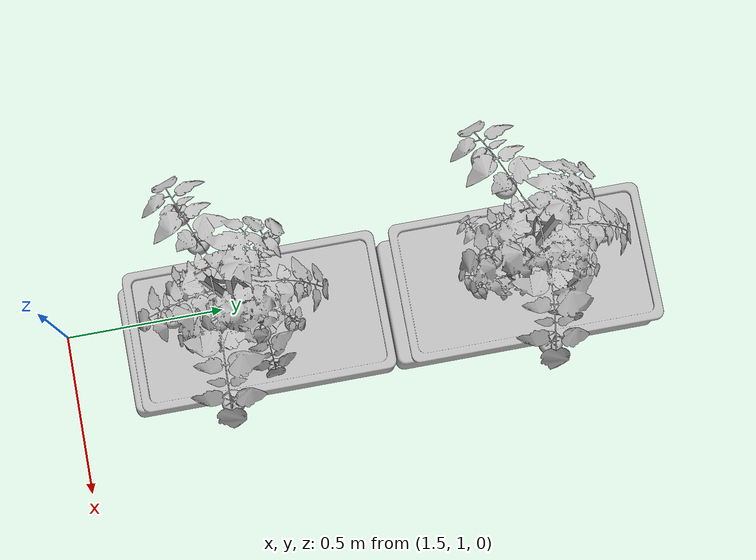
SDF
<sdf version="1.6">
 <world name="default">
  <model name="plant12">
   <static>0</static>
   <link name="tomato_plant_link">
    <inertial>
     <mass>20</mass>
     <inertia><ixx>1</ixx><ixy>0</ixy><ixz>0</ixz><iyy>1</iyy><iyz>0</iyz><izz>1</izz></inertia>
    </inertial>
    <visual name="visual">
     <geometry><mesh><uri>model://tomato_plant/meshes/tomato_plant.obj</uri></mesh></geometry>
    </visual>
    <collision name="collision">
     <pose>0 0 0.05 0 -0 0</pose>
     <geometry><box><size>0.1 0.1 0.1</size></box></geometry>
    </collision>
   </link>
   <link name="t_link_0">
    <pose>0.176111 0.046061 0.713729 0 -0 0</pose>
    <inertial>
     <mass>0.1</mass>
     <inertia><ixx>1</ixx><ixy>0</ixy><ixz>0</ixz><iyy>1</iyy><iyz>0</iyz><izz>1</izz></inertia>
    </inertial>
    <collision name="collision"><geometry><sphere><radius>0.02</radius></sphere></geometry></collision>
    <visual name="visual">
     <geometry><mesh><uri>model://green_tomato/meshes/green_tomato.obj</uri></mesh></geometry>
    </visual>
   </link>
   <joint name="t_joint_0" type="fixed">
    <parent>tomato_plant_link</parent>
    <child>t_link_0</child>
    <axis>
     <xyz>0 0 1</xyz>
     <use_parent_model_frame>1</use_parent_model_frame>
     <limit><lower>-1e+16</lower><upper>1e+16</upper></limit>
    </axis>
    <sensor name="force_torque" type="force_torque">
     <always_on>1</always_on>
     <update_rate>250</update_rate>
     <plugin name="breakable_0" filename="libBreakableJointPlugin.so">
      <breaking_force_N>10</breaking_force_N>
     </plugin>
    </sensor>
   </joint>
   <link name="t_link_1">
    <pose>0.063172 0.108629 0.685474 0 -0 0</pose>
    <inertial>
     <mass>0.1</mass>
     <inertia><ixx>1</ixx><ixy>0</ixy><ixz>0</ixz><iyy>1</iyy><iyz>0</iyz><izz>1</izz></inertia>
    </inertial>
    <collision name="collision"><geometry><sphere><radius>0.02</radius></sphere></geometry></collision>
    <visual name="visual">
     <geometry><mesh><uri>model://green_tomato/meshes/green_tomato.obj</uri></mesh></geometry>
    </visual>
   </link>
   <joint name="t_joint_1" type="fixed">
    <parent>tomato_plant_link</parent>
    <child>t_link_1</child>
    <axis>
     <xyz>0 0 1</xyz>
     <use_parent_model_frame>1</use_parent_model_frame>
     <limit><lower>-1e+16</lower><upper>1e+16</upper></limit>
    </axis>
    <sensor name="force_torque" type="force_torque">
     <always_on>1</always_on>
     <update_rate>250</update_rate>
     <plugin name="breakable_1" filename="libBreakableJointPlugin.so">
      <breaking_force_N>10</breaking_force_N>
     </plugin>
    </sensor>
   </joint>
   <link name="t_link_2">
    <pose>0.062027 -0.170581 0.614534 0 -0 0</pose>
    <inertial>
     <mass>0.1</mass>
     <inertia><ixx>1</ixx><ixy>0</ixy><ixz>0</ixz><iyy>1</iyy><iyz>0</iyz><izz>1</izz></inertia>
    </inertial>
    <collision name="collision"><geometry><sphere><radius>0.02</radius></sphere></geometry></collision>
    <visual name="visual">
     <geometry><mesh><uri>model://green_tomato/meshes/green_tomato.obj</uri></mesh></geometry>
    </visual>
   </link>
   <joint name="t_joint_2" type="fixed">
    <parent>tomato_plant_link</parent>
    <child>t_link_2</child>
    <axis>
     <xyz>0 0 1</xyz>
     <use_parent_model_frame>1</use_parent_model_frame>
     <limit><lower>-1e+16</lower><upper>1e+16</upper></limit>
    </axis>
    <sensor name="force_torque" type="force_torque">
     <always_on>1</always_on>
     <update_rate>250</update_rate>
     <plugin name="breakable_2" filename="libBreakableJointPlugin.so">
      <breaking_force_N>10</breaking_force_N>
     </plugin>
    </sensor>
   </joint>
   <link name="t_link_3">
    <pose>0.114746 0.0304 0.926457 0 -0 0</pose>
    <inertial>
     <mass>0.1</mass>
     <inertia><ixx>1</ixx><ixy>0</ixy><ixz>0</ixz><iyy>1</iyy><iyz>0</iyz><izz>1</izz></inertia>
    </inertial>
    <collision name="collision"><geometry><sphere><radius>0.02</radius></sphere></geometry></collision>
    <visual name="visual">
     <geometry><mesh><uri>model://yellow_tomato/meshes/yellow_tomato.obj</uri></mesh></geometry>
    </visual>
   </link>
   <joint name="t_joint_3" type="fixed">
    <parent>tomato_plant_link</parent>
    <child>t_link_3</child>
    <axis>
     <xyz>0 0 1</xyz>
     <use_parent_model_frame>1</use_parent_model_frame>
     <limit><lower>-1e+16</lower><upper>1e+16</upper></limit>
    </axis>
    <sensor name="force_torque" type="force_torque">
     <always_on>1</always_on>
     <update_rate>250</update_rate>
     <plugin name="breakable_3" filename="libBreakableJointPlugin.so">
      <breaking_force_N>10</breaking_force_N>
     </plugin>
    </sensor>
   </joint>
   <link name="t_link_4">
    <pose>0.003426 0.147925 0.840454 0 -0 0</pose>
    <inertial>
     <mass>0.1</mass>
     <inertia><ixx>1</ixx><ixy>0</ixy><ixz>0</ixz><iyy>1</iyy><iyz>0</iyz><izz>1</izz></inertia>
    </inertial>
    <collision name="collision"><geometry><sphere><radius>0.02</radius></sphere></geometry></collision>
    <visual name="visual">
     <geometry><mesh><uri>model://yellow_tomato/meshes/yellow_tomato.obj</uri></mesh></geometry>
    </visual>
   </link>
   <joint name="t_joint_4" type="fixed">
    <parent>tomato_plant_link</parent>
    <child>t_link_4</child>
    <axis>
     <xyz>0 0 1</xyz>
     <use_parent_model_frame>1</use_parent_model_frame>
     <limit><lower>-1e+16</lower><upper>1e+16</upper></limit>
    </axis>
    <sensor name="force_torque" type="force_torque">
     <always_on>1</always_on>
     <update_rate>250</update_rate>
     <plugin name="breakable_4" filename="libBreakableJointPlugin.so">
      <breaking_force_N>10</breaking_force_N>
     </plugin>
    </sensor>
   </joint>
   <link name="t_link_5">
    <pose>-0.12391 0.091553 0.91111 0 -0 0</pose>
    <inertial>
     <mass>0.1</mass>
     <inertia><ixx>1</ixx><ixy>0</ixy><ixz>0</ixz><iyy>1</iyy><iyz>0</iyz><izz>1</izz></inertia>
    </inertial>
    <collision name="collision"><geometry><sphere><radius>0.02</radius></sphere></geometry></collision>
    <visual name="visual">
     <geometry><mesh><uri>model://yellow_tomato/meshes/yellow_tomato.obj</uri></mesh></geometry>
    </visual>
   </link>
   <joint name="t_joint_5" type="fixed">
    <parent>tomato_plant_link</parent>
    <child>t_link_5</child>
    <axis>
     <xyz>0 0 1</xyz>
     <use_parent_model_frame>1</use_parent_model_frame>
     <limit><lower>-1e+16</lower><upper>1e+16</upper></limit>
    </axis>
    <sensor name="force_torque" type="force_torque">
     <always_on>1</always_on>
     <update_rate>250</update_rate>
     <plugin name="breakable_5" filename="libBreakableJointPlugin.so">
      <breaking_force_N>10</breaking_force_N>
     </plugin>
    </sensor>
   </joint>
   <link name="t_link_6">
    <pose>-0.23014 -0.132697 0.911579 0 -0 0</pose>
    <inertial>
     <mass>0.1</mass>
     <inertia><ixx>1</ixx><ixy>0</ixy><ixz>0</ixz><iyy>1</iyy><iyz>0</iyz><izz>1</izz></inertia>
    </inertial>
    <collision name="collision"><geometry><sphere><radius>0.03</radius></sphere></geometry></collision>
    <visual name="visual">
     <geometry><mesh><uri>model://red_tomato/meshes/red_tomato.obj</uri></mesh></geometry>
    </visual>
   </link>
   <joint name="t_joint_6" type="fixed">
    <parent>tomato_plant_link</parent>
    <child>t_link_6</child>
    <axis>
     <xyz>0 0 1</xyz>
     <use_parent_model_frame>1</use_parent_model_frame>
     <limit><lower>-1e+16</lower><upper>1e+16</upper></limit>
    </axis>
    <sensor name="force_torque" type="force_torque">
     <always_on>1</always_on>
     <update_rate>250</update_rate>
     <plugin name="breakable_6" filename="libBreakableJointPlugin.so">
      <breaking_force_N>10</breaking_force_N>
     </plugin>
    </sensor>
   </joint>
   <link name="t_link_7">
    <pose>-0.139776 -0.09326 0.950185 0 -0 0</pose>
    <inertial>
     <mass>0.1</mass>
     <inertia><ixx>1</ixx><ixy>0</ixy><ixz>0</ixz><iyy>1</iyy><iyz>0</iyz><izz>1</izz></inertia>
    </inertial>
    <collision name="collision"><geometry><sphere><radius>0.03</radius></sphere></geometry></collision>
    <visual name="visual">
     <geometry><mesh><uri>model://red_tomato/meshes/red_tomato.obj</uri></mesh></geometry>
    </visual>
   </link>
   <joint name="t_joint_7" type="fixed">
    <parent>tomato_plant_link</parent>
    <child>t_link_7</child>
    <axis>
     <xyz>0 0 1</xyz>
     <use_parent_model_frame>1</use_parent_model_frame>
     <limit><lower>-1e+16</lower><upper>1e+16</upper></limit>
    </axis>
    <sensor name="force_torque" type="force_torque">
     <always_on>1</always_on>
     <update_rate>250</update_rate>
     <plugin name="breakable_7" filename="libBreakableJointPlugin.so">
      <breaking_force_N>10</breaking_force_N>
     </plugin>
    </sensor>
   </joint>
   <link name="t_link_8">
    <pose>0.284181 -0.063758 1.01928 0 -0 0</pose>
    <inertial>
     <mass>0.1</mass>
     <inertia><ixx>1</ixx><ixy>0</ixy><ixz>0</ixz><iyy>1</iyy><iyz>0</iyz><izz>1</izz></inertia>
    </inertial>
    <collision name="collision"><geometry><sphere><radius>0.03</radius></sphere></geometry></collision>
    <visual name="visual">
     <geometry><mesh><uri>model://red_tomato/meshes/red_tomato.obj</uri></mesh></geometry>
    </visual>
   </link>
   <joint name="t_joint_8" type="fixed">
    <parent>tomato_plant_link</parent>
    <child>t_link_8</child>
    <axis>
     <xyz>0 0 1</xyz>
     <use_parent_model_frame>1</use_parent_model_frame>
     <limit><lower>-1e+16</lower><upper>1e+16</upper></limit>
    </axis>
    <sensor name="force_torque" type="force_torque">
     <always_on>1</always_on>
     <update_rate>250</update_rate>
     <plugin name="breakable_8" filename="libBreakableJointPlugin.so">
      <breaking_force_N>10</breaking_force_N>
     </plugin>
    </sensor>
   </joint>
   <link name="t_link_9">
    <pose>0.055319 -0.176349 1.06525 0 -0 0</pose>
    <inertial>
     <mass>0.1</mass>
     <inertia><ixx>1</ixx><ixy>0</ixy><ixz>0</ixz><iyy>1</iyy><iyz>0</iyz><izz>1</izz></inertia>
    </inertial>
    <collision name="collision"><geometry><sphere><radius>0.03</radius></sphere></geometry></collision>
    <visual name="visual">
     <geometry><mesh><uri>model://red_tomato/meshes/red_tomato.obj</uri></mesh></geometry>
    </visual>
   </link>
   <joint name="t_joint_9" type="fixed">
    <parent>tomato_plant_link</parent>
    <child>t_link_9</child>
    <axis>
     <xyz>0 0 1</xyz>
     <use_parent_model_frame>1</use_parent_model_frame>
     <limit><lower>-1e+16</lower><upper>1e+16</upper></limit>
    </axis>
    <sensor name="force_torque" type="force_torque">
     <always_on>1</always_on>
     <update_rate>250</update_rate>
     <plugin name="breakable_9" filename="libBreakableJointPlugin.so">
      <breaking_force_N>10</breaking_force_N>
     </plugin>
    </sensor>
   </joint>
   <pose>1.6401 1.61222 0.11039 -0.000846 0.001639 -0.013639</pose>
  </model>
  <model name="trough12">
   <static>1</static>
   <link name="trough_link">
    <visual name="visual"><geometry><mesh><uri>model://trough/meshes/truf.obj</uri></mesh></geometry></visual>
   </link>
   <pose>1.62 1.6 0.18 1.57 -0 1.57</pose>
  </model>
  <model name="plant13">
   <static>0</static>
   <link name="tomato_plant_link">
    <inertial>
     <mass>20</mass>
     <inertia><ixx>1</ixx><ixy>0</ixy><ixz>0</ixz><iyy>1</iyy><iyz>0</iyz><izz>1</izz></inertia>
    </inertial>
    <visual name="visual">
     <geometry><mesh><uri>model://tomato_plant/meshes/tomato_plant.obj</uri></mesh></geometry>
    </visual>
    <collision name="collision">
     <pose>0 0 0.05 0 -0 0</pose>
     <geometry><box><size>0.1 0.1 0.1</size></box></geometry>
    </collision>
   </link>
   <link name="t_link_0">
    <pose>0.176111 0.046061 0.713729 0 -0 0</pose>
    <inertial>
     <mass>0.1</mass>
     <inertia><ixx>1</ixx><ixy>0</ixy><ixz>0</ixz><iyy>1</iyy><iyz>0</iyz><izz>1</izz></inertia>
    </inertial>
    <collision name="collision"><geometry><sphere><radius>0.02</radius></sphere></geometry></collision>
    <visual name="visual">
     <geometry><mesh><uri>model://green_tomato/meshes/green_tomato.obj</uri></mesh></geometry>
    </visual>
   </link>
   <joint name="t_joint_0" type="fixed">
    <parent>tomato_plant_link</parent>
    <child>t_link_0</child>
    <axis>
     <xyz>0 0 1</xyz>
     <use_parent_model_frame>1</use_parent_model_frame>
     <limit><lower>-1e+16</lower><upper>1e+16</upper></limit>
    </axis>
    <sensor name="force_torque" type="force_torque">
     <always_on>1</always_on>
     <update_rate>250</update_rate>
     <plugin name="breakable_0" filename="libBreakableJointPlugin.so">
      <breaking_force_N>10</breaking_force_N>
     </plugin>
    </sensor>
   </joint>
   <link name="t_link_1">
    <pose>0.063172 0.108629 0.685474 0 -0 0</pose>
    <inertial>
     <mass>0.1</mass>
     <inertia><ixx>1</ixx><ixy>0</ixy><ixz>0</ixz><iyy>1</iyy><iyz>0</iyz><izz>1</izz></inertia>
    </inertial>
    <collision name="collision"><geometry><sphere><radius>0.02</radius></sphere></geometry></collision>
    <visual name="visual">
     <geometry><mesh><uri>model://green_tomato/meshes/green_tomato.obj</uri></mesh></geometry>
    </visual>
   </link>
   <joint name="t_joint_1" type="fixed">
    <parent>tomato_plant_link</parent>
    <child>t_link_1</child>
    <axis>
     <xyz>0 0 1</xyz>
     <use_parent_model_frame>1</use_parent_model_frame>
     <limit><lower>-1e+16</lower><upper>1e+16</upper></limit>
    </axis>
    <sensor name="force_torque" type="force_torque">
     <always_on>1</always_on>
     <update_rate>250</update_rate>
     <plugin name="breakable_1" filename="libBreakableJointPlugin.so">
      <breaking_force_N>10</breaking_force_N>
     </plugin>
    </sensor>
   </joint>
   <link name="t_link_2">
    <pose>0.062027 -0.170581 0.614534 0 -0 0</pose>
    <inertial>
     <mass>0.1</mass>
     <inertia><ixx>1</ixx><ixy>0</ixy><ixz>0</ixz><iyy>1</iyy><iyz>0</iyz><izz>1</izz></inertia>
    </inertial>
    <collision name="collision"><geometry><sphere><radius>0.02</radius></sphere></geometry></collision>
    <visual name="visual">
     <geometry><mesh><uri>model://green_tomato/meshes/green_tomato.obj</uri></mesh></geometry>
    </visual>
   </link>
   <joint name="t_joint_2" type="fixed">
    <parent>tomato_plant_link</parent>
    <child>t_link_2</child>
    <axis>
     <xyz>0 0 1</xyz>
     <use_parent_model_frame>1</use_parent_model_frame>
     <limit><lower>-1e+16</lower><upper>1e+16</upper></limit>
    </axis>
    <sensor name="force_torque" type="force_torque">
     <always_on>1</always_on>
     <update_rate>250</update_rate>
     <plugin name="breakable_2" filename="libBreakableJointPlugin.so">
      <breaking_force_N>10</breaking_force_N>
     </plugin>
    </sensor>
   </joint>
   <link name="t_link_3">
    <pose>0.114746 0.0304 0.926457 0 -0 0</pose>
    <inertial>
     <mass>0.1</mass>
     <inertia><ixx>1</ixx><ixy>0</ixy><ixz>0</ixz><iyy>1</iyy><iyz>0</iyz><izz>1</izz></inertia>
    </inertial>
    <collision name="collision"><geometry><sphere><radius>0.02</radius></sphere></geometry></collision>
    <visual name="visual">
     <geometry><mesh><uri>model://yellow_tomato/meshes/yellow_tomato.obj</uri></mesh></geometry>
    </visual>
   </link>
   <joint name="t_joint_3" type="fixed">
    <parent>tomato_plant_link</parent>
    <child>t_link_3</child>
    <axis>
     <xyz>0 0 1</xyz>
     <use_parent_model_frame>1</use_parent_model_frame>
     <limit><lower>-1e+16</lower><upper>1e+16</upper></limit>
    </axis>
    <sensor name="force_torque" type="force_torque">
     <always_on>1</always_on>
     <update_rate>250</update_rate>
     <plugin name="breakable_3" filename="libBreakableJointPlugin.so">
      <breaking_force_N>10</breaking_force_N>
     </plugin>
    </sensor>
   </joint>
   <link name="t_link_4">
    <pose>0.003426 0.147925 0.840454 0 -0 0</pose>
    <inertial>
     <mass>0.1</mass>
     <inertia><ixx>1</ixx><ixy>0</ixy><ixz>0</ixz><iyy>1</iyy><iyz>0</iyz><izz>1</izz></inertia>
    </inertial>
    <collision name="collision"><geometry><sphere><radius>0.02</radius></sphere></geometry></collision>
    <visual name="visual">
     <geometry><mesh><uri>model://yellow_tomato/meshes/yellow_tomato.obj</uri></mesh></geometry>
    </visual>
   </link>
   <joint name="t_joint_4" type="fixed">
    <parent>tomato_plant_link</parent>
    <child>t_link_4</child>
    <axis>
     <xyz>0 0 1</xyz>
     <use_parent_model_frame>1</use_parent_model_frame>
     <limit><lower>-1e+16</lower><upper>1e+16</upper></limit>
    </axis>
    <sensor name="force_torque" type="force_torque">
     <always_on>1</always_on>
     <update_rate>250</update_rate>
     <plugin name="breakable_4" filename="libBreakableJointPlugin.so">
      <breaking_force_N>10</breaking_force_N>
     </plugin>
    </sensor>
   </joint>
   <link name="t_link_5">
    <pose>-0.12391 0.091553 0.91111 0 -0 0</pose>
    <inertial>
     <mass>0.1</mass>
     <inertia><ixx>1</ixx><ixy>0</ixy><ixz>0</ixz><iyy>1</iyy><iyz>0</iyz><izz>1</izz></inertia>
    </inertial>
    <collision name="collision"><geometry><sphere><radius>0.02</radius></sphere></geometry></collision>
    <visual name="visual">
     <geometry><mesh><uri>model://yellow_tomato/meshes/yellow_tomato.obj</uri></mesh></geometry>
    </visual>
   </link>
   <joint name="t_joint_5" type="fixed">
    <parent>tomato_plant_link</parent>
    <child>t_link_5</child>
    <axis>
     <xyz>0 0 1</xyz>
     <use_parent_model_frame>1</use_parent_model_frame>
     <limit><lower>-1e+16</lower><upper>1e+16</upper></limit>
    </axis>
    <sensor name="force_torque" type="force_torque">
     <always_on>1</always_on>
     <update_rate>250</update_rate>
     <plugin name="breakable_5" filename="libBreakableJointPlugin.so">
      <breaking_force_N>10</breaking_force_N>
     </plugin>
    </sensor>
   </joint>
   <link name="t_link_6">
    <pose>-0.23014 -0.132697 0.911579 0 -0 0</pose>
    <inertial>
     <mass>0.1</mass>
     <inertia><ixx>1</ixx><ixy>0</ixy><ixz>0</ixz><iyy>1</iyy><iyz>0</iyz><izz>1</izz></inertia>
    </inertial>
    <collision name="collision"><geometry><sphere><radius>0.03</radius></sphere></geometry></collision>
    <visual name="visual">
     <geometry><mesh><uri>model://red_tomato/meshes/red_tomato.obj</uri></mesh></geometry>
    </visual>
   </link>
   <joint name="t_joint_6" type="fixed">
    <parent>tomato_plant_link</parent>
    <child>t_link_6</child>
    <axis>
     <xyz>0 0 1</xyz>
     <use_parent_model_frame>1</use_parent_model_frame>
     <limit><lower>-1e+16</lower><upper>1e+16</upper></limit>
    </axis>
    <sensor name="force_torque" type="force_torque">
     <always_on>1</always_on>
     <update_rate>250</update_rate>
     <plugin name="breakable_6" filename="libBreakableJointPlugin.so">
      <breaking_force_N>10</breaking_force_N>
     </plugin>
    </sensor>
   </joint>
   <link name="t_link_7">
    <pose>-0.139776 -0.09326 0.950185 0 -0 0</pose>
    <inertial>
     <mass>0.1</mass>
     <inertia><ixx>1</ixx><ixy>0</ixy><ixz>0</ixz><iyy>1</iyy><iyz>0</iyz><izz>1</izz></inertia>
    </inertial>
    <collision name="collision"><geometry><sphere><radius>0.03</radius></sphere></geometry></collision>
    <visual name="visual">
     <geometry><mesh><uri>model://red_tomato/meshes/red_tomato.obj</uri></mesh></geometry>
    </visual>
   </link>
   <joint name="t_joint_7" type="fixed">
    <parent>tomato_plant_link</parent>
    <child>t_link_7</child>
    <axis>
     <xyz>0 0 1</xyz>
     <use_parent_model_frame>1</use_parent_model_frame>
     <limit><lower>-1e+16</lower><upper>1e+16</upper></limit>
    </axis>
    <sensor name="force_torque" type="force_torque">
     <always_on>1</always_on>
     <update_rate>250</update_rate>
     <plugin name="breakable_7" filename="libBreakableJointPlugin.so">
      <breaking_force_N>10</breaking_force_N>
     </plugin>
    </sensor>
   </joint>
   <link name="t_link_8">
    <pose>0.284181 -0.063758 1.01928 0 -0 0</pose>
    <inertial>
     <mass>0.1</mass>
     <inertia><ixx>1</ixx><ixy>0</ixy><ixz>0</ixz><iyy>1</iyy><iyz>0</iyz><izz>1</izz></inertia>
    </inertial>
    <collision name="collision"><geometry><sphere><radius>0.03</radius></sphere></geometry></collision>
    <visual name="visual">
     <geometry><mesh><uri>model://red_tomato/meshes/red_tomato.obj</uri></mesh></geometry>
    </visual>
   </link>
   <joint name="t_joint_8" type="fixed">
    <parent>tomato_plant_link</parent>
    <child>t_link_8</child>
    <axis>
     <xyz>0 0 1</xyz>
     <use_parent_model_frame>1</use_parent_model_frame>
     <limit><lower>-1e+16</lower><upper>1e+16</upper></limit>
    </axis>
    <sensor name="force_torque" type="force_torque">
     <always_on>1</always_on>
     <update_rate>250</update_rate>
     <plugin name="breakable_8" filename="libBreakableJointPlugin.so">
      <breaking_force_N>10</breaking_force_N>
     </plugin>
    </sensor>
   </joint>
   <link name="t_link_9">
    <pose>0.055319 -0.176349 1.06525 0 -0 0</pose>
    <inertial>
     <mass>0.1</mass>
     <inertia><ixx>1</ixx><ixy>0</ixy><ixz>0</ixz><iyy>1</iyy><iyz>0</iyz><izz>1</izz></inertia>
    </inertial>
    <collision name="collision"><geometry><sphere><radius>0.03</radius></sphere></geometry></collision>
    <visual name="visual">
     <geometry><mesh><uri>model://red_tomato/meshes/red_tomato.obj</uri></mesh></geometry>
    </visual>
   </link>
   <joint name="t_joint_9" type="fixed">
    <parent>tomato_plant_link</parent>
    <child>t_link_9</child>
    <axis>
     <xyz>0 0 1</xyz>
     <use_parent_model_frame>1</use_parent_model_frame>
     <limit><lower>-1e+16</lower><upper>1e+16</upper></limit>
    </axis>
    <sensor name="force_torque" type="force_torque">
     <always_on>1</always_on>
     <update_rate>250</update_rate>
     <plugin name="breakable_9" filename="libBreakableJointPlugin.so">
      <breaking_force_N>10</breaking_force_N>
     </plugin>
    </sensor>
   </joint>
   <pose>1.64008 2.41221 0.10987 -0.000832 0.001624 -0.013628</pose>
  </model>
  <model name="trough13">
   <static>1</static>
   <link name="trough_link">
    <visual name="visual"><geometry><mesh><uri>model://trough/meshes/truf.obj</uri></mesh></geometry></visual>
   </link>
   <pose>1.62 2.4 0.18 1.57 -0 1.57</pose>
  </model>
 </world>
</sdf>
